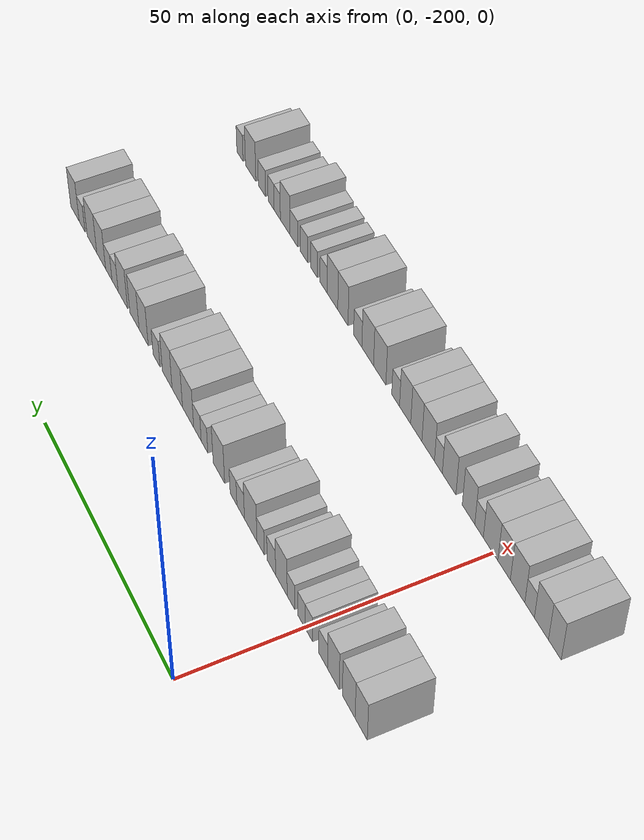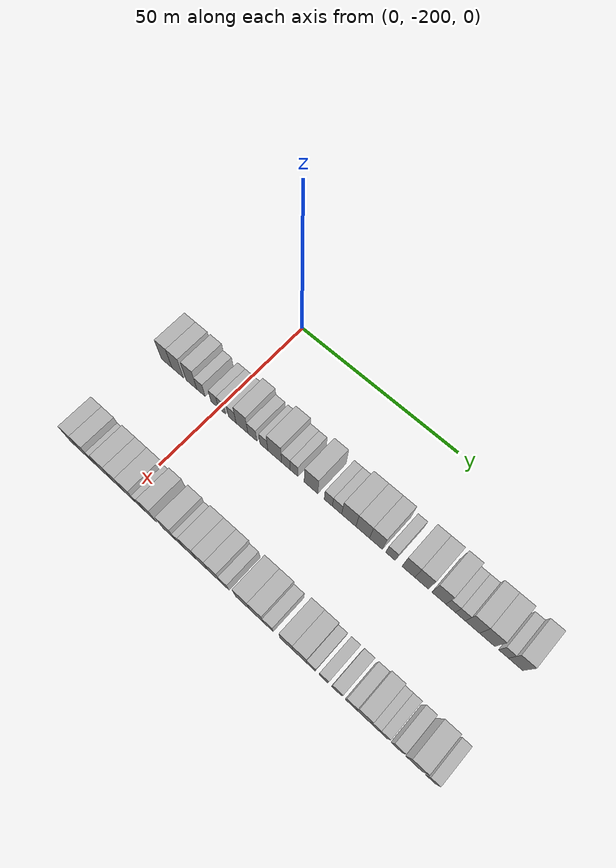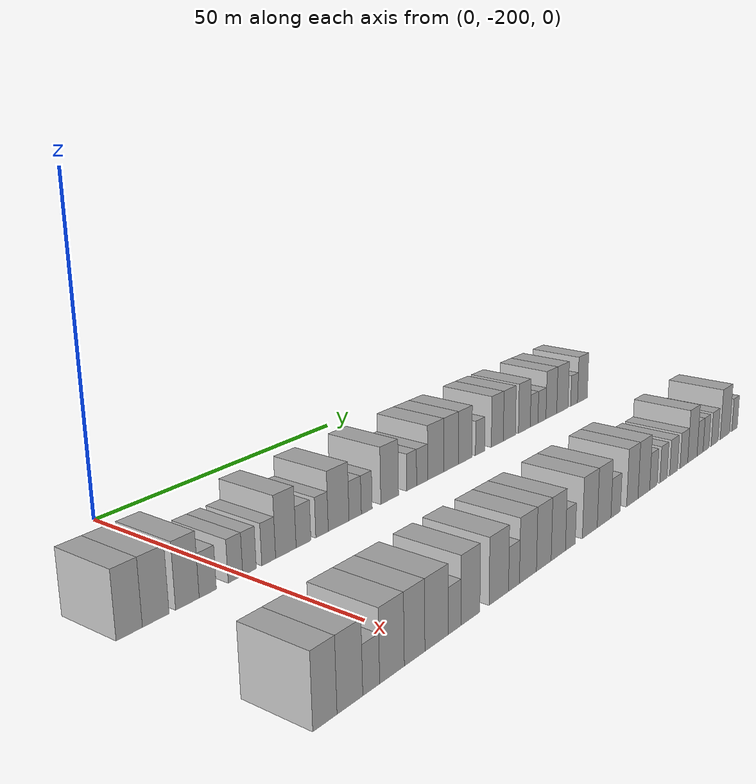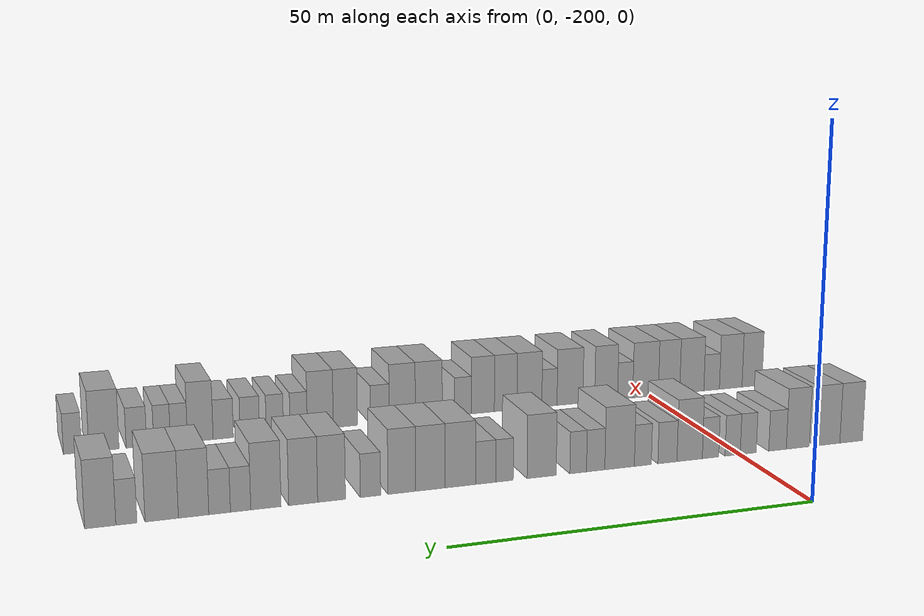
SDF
<sdf version="1.6">
 <world name="default">
  <model name="building_1">
   <static>1</static>
   <pose>25.0000 -218.1177 0 0.000000 0.000000 0.000000</pose>
   <link name="link">
    <pose>0 0 4.50 0 0 0</pose>
    <collision name="collision"><geometry><box><size>10.0000 3.7646 9.0000</size></box></geometry></collision>
    <visual name="visual">
     <cast_shadows>0</cast_shadows>
     <geometry><box><size>10.0000 3.7646 9.0000</size></box></geometry>
     <material>
      <script>
       <uri>model://HANNAS_wall/materials/scripts</uri>
       <uri>model://HANNAS_wall/materials/textures</uri>
       <name>vrc/HANNAS_wall</name>
      </script>
     </material>
    </visual>
   </link>
  </model>
  <model name="building_2">
   <static>1</static>
   <pose>25.0000 -214.2348 0 0.000000 0.000000 0.000000</pose>
   <link name="link">
    <pose>0 0 4.50 0 0 0</pose>
    <collision name="collision"><geometry><box><size>10.0000 4.0012 9.0000</size></box></geometry></collision>
    <visual name="visual">
     <cast_shadows>0</cast_shadows>
     <geometry><box><size>10.0000 4.0012 9.0000</size></box></geometry>
     <material>
      <script>
       <uri>model://HANNAS_wall/materials/scripts</uri>
       <uri>model://HANNAS_wall/materials/textures</uri>
       <name>vrc/HANNAS_wall</name>
      </script>
     </material>
    </visual>
   </link>
  </model>
  <model name="building_3">
   <static>1</static>
   <pose>25.0000 -209.3623 0 0.000000 0.000000 0.000000</pose>
   <link name="link">
    <pose>0 0 4.50 0 0 0</pose>
    <collision name="collision"><geometry><box><size>10.0000 3.7438 9.0000</size></box></geometry></collision>
    <visual name="visual">
     <cast_shadows>0</cast_shadows>
     <geometry><box><size>10.0000 3.7438 9.0000</size></box></geometry>
     <material>
      <script>
       <uri>model://HANNAS_wall/materials/scripts</uri>
       <uri>model://HANNAS_wall/materials/textures</uri>
       <name>vrc/HANNAS_wall</name>
      </script>
     </material>
    </visual>
   </link>
  </model>
  <model name="building_4">
   <static>1</static>
   <pose>25.0000 -206.0749 0 0.000000 0.000000 0.000000</pose>
   <link name="link">
    <pose>0 0 3.00 0 0 0</pose>
    <collision name="collision"><geometry><box><size>10.0000 2.8311 6.0000</size></box></geometry></collision>
    <visual name="visual">
     <cast_shadows>0</cast_shadows>
     <geometry><box><size>10.0000 2.8311 6.0000</size></box></geometry>
     <material>
      <script>
       <uri>model://HANNAS_wall/materials/scripts</uri>
       <uri>model://HANNAS_wall/materials/textures</uri>
       <name>vrc/HANNAS_wall</name>
      </script>
     </material>
    </visual>
   </link>
  </model>
  <model name="building_5">
   <static>1</static>
   <pose>25.0000 -201.3900 0 0.000000 0.000000 0.000000</pose>
   <link name="link">
    <pose>0 0 3.00 0 0 0</pose>
    <collision name="collision"><geometry><box><size>10.0000 2.5387 6.0000</size></box></geometry></collision>
    <visual name="visual">
     <cast_shadows>0</cast_shadows>
     <geometry><box><size>10.0000 2.5387 6.0000</size></box></geometry>
     <material>
      <script>
       <uri>model://HANNAS_wall/materials/scripts</uri>
       <uri>model://HANNAS_wall/materials/textures</uri>
       <name>vrc/HANNAS_wall</name>
      </script>
     </material>
    </visual>
   </link>
  </model>
  <model name="building_6">
   <static>1</static>
   <pose>25.0000 -198.9170 0 0.000000 0.000000 0.000000</pose>
   <link name="link">
    <pose>0 0 3.00 0 0 0</pose>
    <collision name="collision"><geometry><box><size>10.0000 2.4074 6.0000</size></box></geometry></collision>
    <visual name="visual">
     <cast_shadows>0</cast_shadows>
     <geometry><box><size>10.0000 2.4074 6.0000</size></box></geometry>
     <material>
      <script>
       <uri>model://HANNAS_wall/materials/scripts</uri>
       <uri>model://HANNAS_wall/materials/textures</uri>
       <name>vrc/HANNAS_wall</name>
      </script>
     </material>
    </visual>
   </link>
  </model>
  <model name="building_7">
   <static>1</static>
   <pose>25.0000 -195.4330 0 0.000000 0.000000 0.000000</pose>
   <link name="link">
    <pose>0 0 3.00 0 0 0</pose>
    <collision name="collision"><geometry><box><size>10.0000 2.5606 6.0000</size></box></geometry></collision>
    <visual name="visual">
     <cast_shadows>0</cast_shadows>
     <geometry><box><size>10.0000 2.5606 6.0000</size></box></geometry>
     <material>
      <script>
       <uri>model://HANNAS_wall/materials/scripts</uri>
       <uri>model://HANNAS_wall/materials/textures</uri>
       <name>vrc/HANNAS_wall</name>
      </script>
     </material>
    </visual>
   </link>
  </model>
  <model name="building_8">
   <static>1</static>
   <pose>25.0000 -192.1857 0 0.000000 0.000000 0.000000</pose>
   <link name="link">
    <pose>0 0 4.50 0 0 0</pose>
    <collision name="collision"><geometry><box><size>10.0000 3.9340 9.0000</size></box></geometry></collision>
    <visual name="visual">
     <cast_shadows>0</cast_shadows>
     <geometry><box><size>10.0000 3.9340 9.0000</size></box></geometry>
     <material>
      <script>
       <uri>model://HANNAS_wall/materials/scripts</uri>
       <uri>model://HANNAS_wall/materials/textures</uri>
       <name>vrc/HANNAS_wall</name>
      </script>
     </material>
    </visual>
   </link>
  </model>
  <model name="building_9">
   <static>1</static>
   <pose>25.0000 -188.7508 0 0.000000 0.000000 0.000000</pose>
   <link name="link">
    <pose>0 0 3.00 0 0 0</pose>
    <collision name="collision"><geometry><box><size>10.0000 2.9357 6.0000</size></box></geometry></collision>
    <visual name="visual">
     <cast_shadows>0</cast_shadows>
     <geometry><box><size>10.0000 2.9357 6.0000</size></box></geometry>
     <material>
      <script>
       <uri>model://HANNAS_wall/materials/scripts</uri>
       <uri>model://HANNAS_wall/materials/textures</uri>
       <name>vrc/HANNAS_wall</name>
      </script>
     </material>
    </visual>
   </link>
  </model>
  <model name="building_10">
   <static>1</static>
   <pose>25.0000 -184.9936 0 0.000000 0.000000 0.000000</pose>
   <link name="link">
    <pose>0 0 3.00 0 0 0</pose>
    <collision name="collision"><geometry><box><size>10.0000 2.5789 6.0000</size></box></geometry></collision>
    <visual name="visual">
     <cast_shadows>0</cast_shadows>
     <geometry><box><size>10.0000 2.5789 6.0000</size></box></geometry>
     <material>
      <script>
       <uri>model://HANNAS_wall/materials/scripts</uri>
       <uri>model://HANNAS_wall/materials/textures</uri>
       <name>vrc/HANNAS_wall</name>
      </script>
     </material>
    </visual>
   </link>
  </model>
  <model name="building_11">
   <static>1</static>
   <pose>25.0000 -181.4808 0 0.000000 0.000000 0.000000</pose>
   <link name="link">
    <pose>0 0 4.50 0 0 0</pose>
    <collision name="collision"><geometry><box><size>10.0000 4.4466 9.0000</size></box></geometry></collision>
    <visual name="visual">
     <cast_shadows>0</cast_shadows>
     <geometry><box><size>10.0000 4.4466 9.0000</size></box></geometry>
     <material>
      <script>
       <uri>model://HANNAS_wall/materials/scripts</uri>
       <uri>model://HANNAS_wall/materials/textures</uri>
       <name>vrc/HANNAS_wall</name>
      </script>
     </material>
    </visual>
   </link>
  </model>
  <model name="building_12">
   <static>1</static>
   <pose>25.0000 -177.8910 0 0.000000 0.000000 0.000000</pose>
   <link name="link">
    <pose>0 0 3.00 0 0 0</pose>
    <collision name="collision"><geometry><box><size>10.0000 2.7331 6.0000</size></box></geometry></collision>
    <visual name="visual">
     <cast_shadows>0</cast_shadows>
     <geometry><box><size>10.0000 2.7331 6.0000</size></box></geometry>
     <material>
      <script>
       <uri>model://HANNAS_wall/materials/scripts</uri>
       <uri>model://HANNAS_wall/materials/textures</uri>
       <name>vrc/HANNAS_wall</name>
      </script>
     </material>
    </visual>
   </link>
  </model>
  <model name="building_13">
   <static>1</static>
   <pose>25.0000 -175.2878 0 0.000000 0.000000 0.000000</pose>
   <link name="link">
    <pose>0 0 3.00 0 0 0</pose>
    <collision name="collision"><geometry><box><size>10.0000 2.4733 6.0000</size></box></geometry></collision>
    <visual name="visual">
     <cast_shadows>0</cast_shadows>
     <geometry><box><size>10.0000 2.4733 6.0000</size></box></geometry>
     <material>
      <script>
       <uri>model://HANNAS_wall/materials/scripts</uri>
       <uri>model://HANNAS_wall/materials/textures</uri>
       <name>vrc/HANNAS_wall</name>
      </script>
     </material>
    </visual>
   </link>
  </model>
  <model name="building_14">
   <static>1</static>
   <pose>25.0000 -169.9233 0 0.000000 0.000000 0.000000</pose>
   <link name="link">
    <pose>0 0 4.50 0 0 0</pose>
    <collision name="collision"><geometry><box><size>10.0000 4.2557 9.0000</size></box></geometry></collision>
    <visual name="visual">
     <cast_shadows>0</cast_shadows>
     <geometry><box><size>10.0000 4.2557 9.0000</size></box></geometry>
     <material>
      <script>
       <uri>model://HANNAS_wall/materials/scripts</uri>
       <uri>model://HANNAS_wall/materials/textures</uri>
       <name>vrc/HANNAS_wall</name>
      </script>
     </material>
    </visual>
   </link>
  </model>
  <model name="building_15">
   <static>1</static>
   <pose>25.0000 -164.5388 0 0.000000 0.000000 0.000000</pose>
   <link name="link">
    <pose>0 0 3.00 0 0 0</pose>
    <collision name="collision"><geometry><box><size>10.0000 2.5134 6.0000</size></box></geometry></collision>
    <visual name="visual">
     <cast_shadows>0</cast_shadows>
     <geometry><box><size>10.0000 2.5134 6.0000</size></box></geometry>
     <material>
      <script>
       <uri>model://HANNAS_wall/materials/scripts</uri>
       <uri>model://HANNAS_wall/materials/textures</uri>
       <name>vrc/HANNAS_wall</name>
      </script>
     </material>
    </visual>
   </link>
  </model>
  <model name="building_16">
   <static>1</static>
   <pose>25.0000 -161.8554 0 0.000000 0.000000 0.000000</pose>
   <link name="link">
    <pose>0 0 3.00 0 0 0</pose>
    <collision name="collision"><geometry><box><size>10.0000 2.8534 6.0000</size></box></geometry></collision>
    <visual name="visual">
     <cast_shadows>0</cast_shadows>
     <geometry><box><size>10.0000 2.8534 6.0000</size></box></geometry>
     <material>
      <script>
       <uri>model://HANNAS_wall/materials/scripts</uri>
       <uri>model://HANNAS_wall/materials/textures</uri>
       <name>vrc/HANNAS_wall</name>
      </script>
     </material>
    </visual>
   </link>
  </model>
  <model name="building_17">
   <static>1</static>
   <pose>25.0000 -158.2648 0 0.000000 0.000000 0.000000</pose>
   <link name="link">
    <pose>0 0 4.50 0 0 0</pose>
    <collision name="collision"><geometry><box><size>10.0000 4.3278 9.0000</size></box></geometry></collision>
    <visual name="visual">
     <cast_shadows>0</cast_shadows>
     <geometry><box><size>10.0000 4.3278 9.0000</size></box></geometry>
     <material>
      <script>
       <uri>model://HANNAS_wall/materials/scripts</uri>
       <uri>model://HANNAS_wall/materials/textures</uri>
       <name>vrc/HANNAS_wall</name>
      </script>
     </material>
    </visual>
   </link>
  </model>
  <model name="building_18">
   <static>1</static>
   <pose>25.0000 -154.0507 0 0.000000 0.000000 0.000000</pose>
   <link name="link">
    <pose>0 0 4.50 0 0 0</pose>
    <collision name="collision"><geometry><box><size>10.0000 4.1003 9.0000</size></box></geometry></collision>
    <visual name="visual">
     <cast_shadows>0</cast_shadows>
     <geometry><box><size>10.0000 4.1003 9.0000</size></box></geometry>
     <material>
      <script>
       <uri>model://HANNAS_wall/materials/scripts</uri>
       <uri>model://HANNAS_wall/materials/textures</uri>
       <name>vrc/HANNAS_wall</name>
      </script>
     </material>
    </visual>
   </link>
  </model>
  <model name="building_19">
   <static>1</static>
   <pose>25.0000 -150.0863 0 0.000000 0.000000 0.000000</pose>
   <link name="link">
    <pose>0 0 4.50 0 0 0</pose>
    <collision name="collision"><geometry><box><size>10.0000 3.8285 9.0000</size></box></geometry></collision>
    <visual name="visual">
     <cast_shadows>0</cast_shadows>
     <geometry><box><size>10.0000 3.8285 9.0000</size></box></geometry>
     <material>
      <script>
       <uri>model://HANNAS_wall/materials/scripts</uri>
       <uri>model://HANNAS_wall/materials/textures</uri>
       <name>vrc/HANNAS_wall</name>
      </script>
     </material>
    </visual>
   </link>
  </model>
  <model name="building_20">
   <static>1</static>
   <pose>25.0000 -145.7861 0 0.000000 0.000000 0.000000</pose>
   <link name="link">
    <pose>0 0 3.00 0 0 0</pose>
    <collision name="collision"><geometry><box><size>10.0000 2.7718 6.0000</size></box></geometry></collision>
    <visual name="visual">
     <cast_shadows>0</cast_shadows>
     <geometry><box><size>10.0000 2.7718 6.0000</size></box></geometry>
     <material>
      <script>
       <uri>model://HANNAS_wall/materials/scripts</uri>
       <uri>model://HANNAS_wall/materials/textures</uri>
       <name>vrc/HANNAS_wall</name>
      </script>
     </material>
    </visual>
   </link>
  </model>
  <model name="building_21">
   <static>1</static>
   <pose>25.0000 -140.5354 0 0.000000 0.000000 0.000000</pose>
   <link name="link">
    <pose>0 0 4.50 0 0 0</pose>
    <collision name="collision"><geometry><box><size>10.0000 3.7296 9.0000</size></box></geometry></collision>
    <visual name="visual">
     <cast_shadows>0</cast_shadows>
     <geometry><box><size>10.0000 3.7296 9.0000</size></box></geometry>
     <material>
      <script>
       <uri>model://HANNAS_wall/materials/scripts</uri>
       <uri>model://HANNAS_wall/materials/textures</uri>
       <name>vrc/HANNAS_wall</name>
      </script>
     </material>
    </visual>
   </link>
  </model>
  <model name="building_22">
   <static>1</static>
   <pose>25.0000 -136.7452 0 0.000000 0.000000 0.000000</pose>
   <link name="link">
    <pose>0 0 4.50 0 0 0</pose>
    <collision name="collision"><geometry><box><size>10.0000 3.8507 9.0000</size></box></geometry></collision>
    <visual name="visual">
     <cast_shadows>0</cast_shadows>
     <geometry><box><size>10.0000 3.8507 9.0000</size></box></geometry>
     <material>
      <script>
       <uri>model://HANNAS_wall/materials/scripts</uri>
       <uri>model://HANNAS_wall/materials/textures</uri>
       <name>vrc/HANNAS_wall</name>
      </script>
     </material>
    </visual>
   </link>
  </model>
  <model name="building_23">
   <static>1</static>
   <pose>25.0000 -131.8363 0 0.000000 0.000000 0.000000</pose>
   <link name="link">
    <pose>0 0 4.50 0 0 0</pose>
    <collision name="collision"><geometry><box><size>10.0000 3.9670 9.0000</size></box></geometry></collision>
    <visual name="visual">
     <cast_shadows>0</cast_shadows>
     <geometry><box><size>10.0000 3.9670 9.0000</size></box></geometry>
     <material>
      <script>
       <uri>model://HANNAS_wall/materials/scripts</uri>
       <uri>model://HANNAS_wall/materials/textures</uri>
       <name>vrc/HANNAS_wall</name>
      </script>
     </material>
    </visual>
   </link>
  </model>
  <model name="building_24">
   <static>1</static>
   <pose>25.0000 -128.5348 0 0.000000 0.000000 0.000000</pose>
   <link name="link">
    <pose>0 0 3.00 0 0 0</pose>
    <collision name="collision"><geometry><box><size>10.0000 2.6360 6.0000</size></box></geometry></collision>
    <visual name="visual">
     <cast_shadows>0</cast_shadows>
     <geometry><box><size>10.0000 2.6360 6.0000</size></box></geometry>
     <material>
      <script>
       <uri>model://HANNAS_wall/materials/scripts</uri>
       <uri>model://HANNAS_wall/materials/textures</uri>
       <name>vrc/HANNAS_wall</name>
      </script>
     </material>
    </visual>
   </link>
  </model>
  <model name="building_25">
   <static>1</static>
   <pose>25.0000 -125.8305 0 0.000000 0.000000 0.000000</pose>
   <link name="link">
    <pose>0 0 3.00 0 0 0</pose>
    <collision name="collision"><geometry><box><size>10.0000 2.7727 6.0000</size></box></geometry></collision>
    <visual name="visual">
     <cast_shadows>0</cast_shadows>
     <geometry><box><size>10.0000 2.7727 6.0000</size></box></geometry>
     <material>
      <script>
       <uri>model://HANNAS_wall/materials/scripts</uri>
       <uri>model://HANNAS_wall/materials/textures</uri>
       <name>vrc/HANNAS_wall</name>
      </script>
     </material>
    </visual>
   </link>
  </model>
  <model name="building_26">
   <static>1</static>
   <pose>25.0000 -122.5052 0 0.000000 0.000000 0.000000</pose>
   <link name="link">
    <pose>0 0 4.50 0 0 0</pose>
    <collision name="collision"><geometry><box><size>10.0000 3.8780 9.0000</size></box></geometry></collision>
    <visual name="visual">
     <cast_shadows>0</cast_shadows>
     <geometry><box><size>10.0000 3.8780 9.0000</size></box></geometry>
     <material>
      <script>
       <uri>model://HANNAS_wall/materials/scripts</uri>
       <uri>model://HANNAS_wall/materials/textures</uri>
       <name>vrc/HANNAS_wall</name>
      </script>
     </material>
    </visual>
   </link>
  </model>
  <model name="building_27">
   <static>1</static>
   <pose>25.0000 -118.4681 0 0.000000 0.000000 0.000000</pose>
   <link name="link">
    <pose>0 0 4.50 0 0 0</pose>
    <collision name="collision"><geometry><box><size>10.0000 4.1962 9.0000</size></box></geometry></collision>
    <visual name="visual">
     <cast_shadows>0</cast_shadows>
     <geometry><box><size>10.0000 4.1962 9.0000</size></box></geometry>
     <material>
      <script>
       <uri>model://HANNAS_wall/materials/scripts</uri>
       <uri>model://HANNAS_wall/materials/textures</uri>
       <name>vrc/HANNAS_wall</name>
      </script>
     </material>
    </visual>
   </link>
  </model>
  <model name="building_28">
   <static>1</static>
   <pose>25.0000 -114.0590 0 0.000000 0.000000 0.000000</pose>
   <link name="link">
    <pose>0 0 3.00 0 0 0</pose>
    <collision name="collision"><geometry><box><size>10.0000 2.6220 6.0000</size></box></geometry></collision>
    <visual name="visual">
     <cast_shadows>0</cast_shadows>
     <geometry><box><size>10.0000 2.6220 6.0000</size></box></geometry>
     <material>
      <script>
       <uri>model://HANNAS_wall/materials/scripts</uri>
       <uri>model://HANNAS_wall/materials/textures</uri>
       <name>vrc/HANNAS_wall</name>
      </script>
     </material>
    </visual>
   </link>
  </model>
  <model name="building_29">
   <static>1</static>
   <pose>25.0000 -110.8329 0 0.000000 0.000000 0.000000</pose>
   <link name="link">
    <pose>0 0 4.50 0 0 0</pose>
    <collision name="collision"><geometry><box><size>10.0000 3.8302 9.0000</size></box></geometry></collision>
    <visual name="visual">
     <cast_shadows>0</cast_shadows>
     <geometry><box><size>10.0000 3.8302 9.0000</size></box></geometry>
     <material>
      <script>
       <uri>model://HANNAS_wall/materials/scripts</uri>
       <uri>model://HANNAS_wall/materials/textures</uri>
       <name>vrc/HANNAS_wall</name>
      </script>
     </material>
    </visual>
   </link>
  </model>
  <model name="building_117">
   <static>1</static>
   <pose>55.0000 -218.1801 0 0.000000 0.000000 0.000000</pose>
   <link name="link">
    <pose>0 0 4.50 0 0 0</pose>
    <collision name="collision"><geometry><box><size>10.0000 3.6397 9.0000</size></box></geometry></collision>
    <visual name="visual">
     <cast_shadows>0</cast_shadows>
     <geometry><box><size>10.0000 3.6397 9.0000</size></box></geometry>
     <material>
      <script>
       <uri>model://HANNAS_wall/materials/scripts</uri>
       <uri>model://HANNAS_wall/materials/textures</uri>
       <name>vrc/HANNAS_wall</name>
      </script>
     </material>
    </visual>
   </link>
  </model>
  <model name="building_118">
   <static>1</static>
   <pose>55.0000 -214.3243 0 0.000000 0.000000 0.000000</pose>
   <link name="link">
    <pose>0 0 4.50 0 0 0</pose>
    <collision name="collision"><geometry><box><size>10.0000 4.0719 9.0000</size></box></geometry></collision>
    <visual name="visual">
     <cast_shadows>0</cast_shadows>
     <geometry><box><size>10.0000 4.0719 9.0000</size></box></geometry>
     <material>
      <script>
       <uri>model://HANNAS_wall/materials/scripts</uri>
       <uri>model://HANNAS_wall/materials/textures</uri>
       <name>vrc/HANNAS_wall</name>
      </script>
     </material>
    </visual>
   </link>
  </model>
  <model name="building_119">
   <static>1</static>
   <pose>55.0000 -210.8907 0 0.000000 0.000000 0.000000</pose>
   <link name="link">
    <pose>0 0 3.00 0 0 0</pose>
    <collision name="collision"><geometry><box><size>10.0000 2.7954 6.0000</size></box></geometry></collision>
    <visual name="visual">
     <cast_shadows>0</cast_shadows>
     <geometry><box><size>10.0000 2.7954 6.0000</size></box></geometry>
     <material>
      <script>
       <uri>model://HANNAS_wall/materials/scripts</uri>
       <uri>model://HANNAS_wall/materials/textures</uri>
       <name>vrc/HANNAS_wall</name>
      </script>
     </material>
    </visual>
   </link>
  </model>
  <model name="building_120">
   <static>1</static>
   <pose>55.0000 -207.3523 0 0.000000 0.000000 0.000000</pose>
   <link name="link">
    <pose>0 0 4.50 0 0 0</pose>
    <collision name="collision"><geometry><box><size>10.0000 4.2812 9.0000</size></box></geometry></collision>
    <visual name="visual">
     <cast_shadows>0</cast_shadows>
     <geometry><box><size>10.0000 4.2812 9.0000</size></box></geometry>
     <material>
      <script>
       <uri>model://HANNAS_wall/materials/scripts</uri>
       <uri>model://HANNAS_wall/materials/textures</uri>
       <name>vrc/HANNAS_wall</name>
      </script>
     </material>
    </visual>
   </link>
  </model>
  <model name="building_121">
   <static>1</static>
   <pose>55.0000 -203.3330 0 0.000000 0.000000 0.000000</pose>
   <link name="link">
    <pose>0 0 4.50 0 0 0</pose>
    <collision name="collision"><geometry><box><size>10.0000 3.7576 9.0000</size></box></geometry></collision>
    <visual name="visual">
     <cast_shadows>0</cast_shadows>
     <geometry><box><size>10.0000 3.7576 9.0000</size></box></geometry>
     <material>
      <script>
       <uri>model://HANNAS_wall/materials/scripts</uri>
       <uri>model://HANNAS_wall/materials/textures</uri>
       <name>vrc/HANNAS_wall</name>
      </script>
     </material>
    </visual>
   </link>
  </model>
  <model name="building_122">
   <static>1</static>
   <pose>55.0000 -199.2296 0 0.000000 0.000000 0.000000</pose>
   <link name="link">
    <pose>0 0 4.50 0 0 0</pose>
    <collision name="collision"><geometry><box><size>10.0000 4.4492 9.0000</size></box></geometry></collision>
    <visual name="visual">
     <cast_shadows>0</cast_shadows>
     <geometry><box><size>10.0000 4.4492 9.0000</size></box></geometry>
     <material>
      <script>
       <uri>model://HANNAS_wall/materials/scripts</uri>
       <uri>model://HANNAS_wall/materials/textures</uri>
       <name>vrc/HANNAS_wall</name>
      </script>
     </material>
    </visual>
   </link>
  </model>
  <model name="building_123">
   <static>1</static>
   <pose>55.0000 -195.6865 0 0.000000 0.000000 0.000000</pose>
   <link name="link">
    <pose>0 0 3.00 0 0 0</pose>
    <collision name="collision"><geometry><box><size>10.0000 2.6368 6.0000</size></box></geometry></collision>
    <visual name="visual">
     <cast_shadows>0</cast_shadows>
     <geometry><box><size>10.0000 2.6368 6.0000</size></box></geometry>
     <material>
      <script>
       <uri>model://HANNAS_wall/materials/scripts</uri>
       <uri>model://HANNAS_wall/materials/textures</uri>
       <name>vrc/HANNAS_wall</name>
      </script>
     </material>
    </visual>
   </link>
  </model>
  <model name="building_124">
   <static>1</static>
   <pose>55.0000 -192.4064 0 0.000000 0.000000 0.000000</pose>
   <link name="link">
    <pose>0 0 4.50 0 0 0</pose>
    <collision name="collision"><geometry><box><size>10.0000 3.9234 9.0000</size></box></geometry></collision>
    <visual name="visual">
     <cast_shadows>0</cast_shadows>
     <geometry><box><size>10.0000 3.9234 9.0000</size></box></geometry>
     <material>
      <script>
       <uri>model://HANNAS_wall/materials/scripts</uri>
       <uri>model://HANNAS_wall/materials/textures</uri>
       <name>vrc/HANNAS_wall</name>
      </script>
     </material>
    </visual>
   </link>
  </model>
  <model name="building_125">
   <static>1</static>
   <pose>55.0000 -186.2597 0 0.000000 0.000000 0.000000</pose>
   <link name="link">
    <pose>0 0 4.50 0 0 0</pose>
    <collision name="collision"><geometry><box><size>10.0000 4.3700 9.0000</size></box></geometry></collision>
    <visual name="visual">
     <cast_shadows>0</cast_shadows>
     <geometry><box><size>10.0000 4.3700 9.0000</size></box></geometry>
     <material>
      <script>
       <uri>model://HANNAS_wall/materials/scripts</uri>
       <uri>model://HANNAS_wall/materials/textures</uri>
       <name>vrc/HANNAS_wall</name>
      </script>
     </material>
    </visual>
   </link>
  </model>
  <model name="building_126">
   <static>1</static>
   <pose>55.0000 -182.8068 0 0.000000 0.000000 0.000000</pose>
   <link name="link">
    <pose>0 0 3.00 0 0 0</pose>
    <collision name="collision"><geometry><box><size>10.0000 2.5359 6.0000</size></box></geometry></collision>
    <visual name="visual">
     <cast_shadows>0</cast_shadows>
     <geometry><box><size>10.0000 2.5359 6.0000</size></box></geometry>
     <material>
      <script>
       <uri>model://HANNAS_wall/materials/scripts</uri>
       <uri>model://HANNAS_wall/materials/textures</uri>
       <name>vrc/HANNAS_wall</name>
      </script>
     </material>
    </visual>
   </link>
  </model>
  <model name="building_127">
   <static>1</static>
   <pose>55.0000 -179.4733 0 0.000000 0.000000 0.000000</pose>
   <link name="link">
    <pose>0 0 4.50 0 0 0</pose>
    <collision name="collision"><geometry><box><size>10.0000 4.1312 9.0000</size></box></geometry></collision>
    <visual name="visual">
     <cast_shadows>0</cast_shadows>
     <geometry><box><size>10.0000 4.1312 9.0000</size></box></geometry>
     <material>
      <script>
       <uri>model://HANNAS_wall/materials/scripts</uri>
       <uri>model://HANNAS_wall/materials/textures</uri>
       <name>vrc/HANNAS_wall</name>
      </script>
     </material>
    </visual>
   </link>
  </model>
  <model name="building_128">
   <static>1</static>
   <pose>55.0000 -175.5440 0 0.000000 0.000000 0.000000</pose>
   <link name="link">
    <pose>0 0 4.50 0 0 0</pose>
    <collision name="collision"><geometry><box><size>10.0000 3.7274 9.0000</size></box></geometry></collision>
    <visual name="visual">
     <cast_shadows>0</cast_shadows>
     <geometry><box><size>10.0000 3.7274 9.0000</size></box></geometry>
     <material>
      <script>
       <uri>model://HANNAS_wall/materials/scripts</uri>
       <uri>model://HANNAS_wall/materials/textures</uri>
       <name>vrc/HANNAS_wall</name>
      </script>
     </material>
    </visual>
   </link>
  </model>
  <model name="building_129">
   <static>1</static>
   <pose>55.0000 -171.7988 0 0.000000 0.000000 0.000000</pose>
   <link name="link">
    <pose>0 0 4.50 0 0 0</pose>
    <collision name="collision"><geometry><box><size>10.0000 3.7630 9.0000</size></box></geometry></collision>
    <visual name="visual">
     <cast_shadows>0</cast_shadows>
     <geometry><box><size>10.0000 3.7630 9.0000</size></box></geometry>
     <material>
      <script>
       <uri>model://HANNAS_wall/materials/scripts</uri>
       <uri>model://HANNAS_wall/materials/textures</uri>
       <name>vrc/HANNAS_wall</name>
      </script>
     </material>
    </visual>
   </link>
  </model>
  <model name="building_130">
   <static>1</static>
   <pose>55.0000 -168.5788 0 0.000000 0.000000 0.000000</pose>
   <link name="link">
    <pose>0 0 3.00 0 0 0</pose>
    <collision name="collision"><geometry><box><size>10.0000 2.6768 6.0000</size></box></geometry></collision>
    <visual name="visual">
     <cast_shadows>0</cast_shadows>
     <geometry><box><size>10.0000 2.6768 6.0000</size></box></geometry>
     <material>
      <script>
       <uri>model://HANNAS_wall/materials/scripts</uri>
       <uri>model://HANNAS_wall/materials/textures</uri>
       <name>vrc/HANNAS_wall</name>
      </script>
     </material>
    </visual>
   </link>
  </model>
  <model name="building_131">
   <static>1</static>
   <pose>55.0000 -163.0974 0 0.000000 0.000000 0.000000</pose>
   <link name="link">
    <pose>0 0 4.50 0 0 0</pose>
    <collision name="collision"><geometry><box><size>10.0000 4.2861 9.0000</size></box></geometry></collision>
    <visual name="visual">
     <cast_shadows>0</cast_shadows>
     <geometry><box><size>10.0000 4.2861 9.0000</size></box></geometry>
     <material>
      <script>
       <uri>model://HANNAS_wall/materials/scripts</uri>
       <uri>model://HANNAS_wall/materials/textures</uri>
       <name>vrc/HANNAS_wall</name>
      </script>
     </material>
    </visual>
   </link>
  </model>
  <model name="building_132">
   <static>1</static>
   <pose>55.0000 -158.8907 0 0.000000 0.000000 0.000000</pose>
   <link name="link">
    <pose>0 0 4.50 0 0 0</pose>
    <collision name="collision"><geometry><box><size>10.0000 4.1274 9.0000</size></box></geometry></collision>
    <visual name="visual">
     <cast_shadows>0</cast_shadows>
     <geometry><box><size>10.0000 4.1274 9.0000</size></box></geometry>
     <material>
      <script>
       <uri>model://HANNAS_wall/materials/scripts</uri>
       <uri>model://HANNAS_wall/materials/textures</uri>
       <name>vrc/HANNAS_wall</name>
      </script>
     </material>
    </visual>
   </link>
  </model>
  <model name="building_133">
   <static>1</static>
   <pose>55.0000 -155.3497 0 0.000000 0.000000 0.000000</pose>
   <link name="link">
    <pose>0 0 3.00 0 0 0</pose>
    <collision name="collision"><geometry><box><size>10.0000 2.9546 6.0000</size></box></geometry></collision>
    <visual name="visual">
     <cast_shadows>0</cast_shadows>
     <geometry><box><size>10.0000 2.9546 6.0000</size></box></geometry>
     <material>
      <script>
       <uri>model://HANNAS_wall/materials/scripts</uri>
       <uri>model://HANNAS_wall/materials/textures</uri>
       <name>vrc/HANNAS_wall</name>
      </script>
     </material>
    </visual>
   </link>
  </model>
  <model name="building_134">
   <static>1</static>
   <pose>55.0000 -150.0129 0 0.000000 0.000000 0.000000</pose>
   <link name="link">
    <pose>0 0 4.50 0 0 0</pose>
    <collision name="collision"><geometry><box><size>10.0000 3.7191 9.0000</size></box></geometry></collision>
    <visual name="visual">
     <cast_shadows>0</cast_shadows>
     <geometry><box><size>10.0000 3.7191 9.0000</size></box></geometry>
     <material>
      <script>
       <uri>model://HANNAS_wall/materials/scripts</uri>
       <uri>model://HANNAS_wall/materials/textures</uri>
       <name>vrc/HANNAS_wall</name>
      </script>
     </material>
    </visual>
   </link>
  </model>
  <model name="building_135">
   <static>1</static>
   <pose>55.0000 -146.1677 0 0.000000 0.000000 0.000000</pose>
   <link name="link">
    <pose>0 0 4.50 0 0 0</pose>
    <collision name="collision"><geometry><box><size>10.0000 3.9712 9.0000</size></box></geometry></collision>
    <visual name="visual">
     <cast_shadows>0</cast_shadows>
     <geometry><box><size>10.0000 3.9712 9.0000</size></box></geometry>
     <material>
      <script>
       <uri>model://HANNAS_wall/materials/scripts</uri>
       <uri>model://HANNAS_wall/materials/textures</uri>
       <name>vrc/HANNAS_wall</name>
      </script>
     </material>
    </visual>
   </link>
  </model>
  <model name="building_136">
   <static>1</static>
   <pose>55.0000 -142.8790 0 0.000000 0.000000 0.000000</pose>
   <link name="link">
    <pose>0 0 3.00 0 0 0</pose>
    <collision name="collision"><geometry><box><size>10.0000 2.6063 6.0000</size></box></geometry></collision>
    <visual name="visual">
     <cast_shadows>0</cast_shadows>
     <geometry><box><size>10.0000 2.6063 6.0000</size></box></geometry>
     <material>
      <script>
       <uri>model://HANNAS_wall/materials/scripts</uri>
       <uri>model://HANNAS_wall/materials/textures</uri>
       <name>vrc/HANNAS_wall</name>
      </script>
     </material>
    </visual>
   </link>
  </model>
  <model name="building_137">
   <static>1</static>
   <pose>55.0000 -139.2829 0 0.000000 0.000000 0.000000</pose>
   <link name="link">
    <pose>0 0 3.00 0 0 0</pose>
    <collision name="collision"><geometry><box><size>10.0000 2.5858 6.0000</size></box></geometry></collision>
    <visual name="visual">
     <cast_shadows>0</cast_shadows>
     <geometry><box><size>10.0000 2.5858 6.0000</size></box></geometry>
     <material>
      <script>
       <uri>model://HANNAS_wall/materials/scripts</uri>
       <uri>model://HANNAS_wall/materials/textures</uri>
       <name>vrc/HANNAS_wall</name>
      </script>
     </material>
    </visual>
   </link>
  </model>
  <model name="building_138">
   <static>1</static>
   <pose>55.0000 -135.5457 0 0.000000 0.000000 0.000000</pose>
   <link name="link">
    <pose>0 0 3.00 0 0 0</pose>
    <collision name="collision"><geometry><box><size>10.0000 2.8887 6.0000</size></box></geometry></collision>
    <visual name="visual">
     <cast_shadows>0</cast_shadows>
     <geometry><box><size>10.0000 2.8887 6.0000</size></box></geometry>
     <material>
      <script>
       <uri>model://HANNAS_wall/materials/scripts</uri>
       <uri>model://HANNAS_wall/materials/textures</uri>
       <name>vrc/HANNAS_wall</name>
      </script>
     </material>
    </visual>
   </link>
  </model>
  <model name="building_139">
   <static>1</static>
   <pose>55.0000 -131.6107 0 0.000000 0.000000 0.000000</pose>
   <link name="link">
    <pose>0 0 3.00 0 0 0</pose>
    <collision name="collision"><geometry><box><size>10.0000 2.9811 6.0000</size></box></geometry></collision>
    <visual name="visual">
     <cast_shadows>0</cast_shadows>
     <geometry><box><size>10.0000 2.9811 6.0000</size></box></geometry>
     <material>
      <script>
       <uri>model://HANNAS_wall/materials/scripts</uri>
       <uri>model://HANNAS_wall/materials/textures</uri>
       <name>vrc/HANNAS_wall</name>
      </script>
     </material>
    </visual>
   </link>
  </model>
  <model name="building_140">
   <static>1</static>
   <pose>55.0000 -128.2485 0 0.000000 0.000000 0.000000</pose>
   <link name="link">
    <pose>0 0 4.50 0 0 0</pose>
    <collision name="collision"><geometry><box><size>10.0000 3.7433 9.0000</size></box></geometry></collision>
    <visual name="visual">
     <cast_shadows>0</cast_shadows>
     <geometry><box><size>10.0000 3.7433 9.0000</size></box></geometry>
     <material>
      <script>
       <uri>model://HANNAS_wall/materials/scripts</uri>
       <uri>model://HANNAS_wall/materials/textures</uri>
       <name>vrc/HANNAS_wall</name>
      </script>
     </material>
    </visual>
   </link>
  </model>
  <model name="building_141">
   <static>1</static>
   <pose>55.0000 -125.1434 0 0.000000 0.000000 0.000000</pose>
   <link name="link">
    <pose>0 0 3.00 0 0 0</pose>
    <collision name="collision"><geometry><box><size>10.0000 2.4670 6.0000</size></box></geometry></collision>
    <visual name="visual">
     <cast_shadows>0</cast_shadows>
     <geometry><box><size>10.0000 2.4670 6.0000</size></box></geometry>
     <material>
      <script>
       <uri>model://HANNAS_wall/materials/scripts</uri>
       <uri>model://HANNAS_wall/materials/textures</uri>
       <name>vrc/HANNAS_wall</name>
      </script>
     </material>
    </visual>
   </link>
  </model>
  <model name="building_142">
   <static>1</static>
   <pose>55.0000 -122.7060 0 0.000000 0.000000 0.000000</pose>
   <link name="link">
    <pose>0 0 3.00 0 0 0</pose>
    <collision name="collision"><geometry><box><size>10.0000 2.4078 6.0000</size></box></geometry></collision>
    <visual name="visual">
     <cast_shadows>0</cast_shadows>
     <geometry><box><size>10.0000 2.4078 6.0000</size></box></geometry>
     <material>
      <script>
       <uri>model://HANNAS_wall/materials/scripts</uri>
       <uri>model://HANNAS_wall/materials/textures</uri>
       <name>vrc/HANNAS_wall</name>
      </script>
     </material>
    </visual>
   </link>
  </model>
  <model name="building_143">
   <static>1</static>
   <pose>55.0000 -119.0363 0 0.000000 0.000000 0.000000</pose>
   <link name="link">
    <pose>0 0 3.00 0 0 0</pose>
    <collision name="collision"><geometry><box><size>10.0000 2.9316 6.0000</size></box></geometry></collision>
    <visual name="visual">
     <cast_shadows>0</cast_shadows>
     <geometry><box><size>10.0000 2.9316 6.0000</size></box></geometry>
     <material>
      <script>
       <uri>model://HANNAS_wall/materials/scripts</uri>
       <uri>model://HANNAS_wall/materials/textures</uri>
       <name>vrc/HANNAS_wall</name>
      </script>
     </material>
    </visual>
   </link>
  </model>
  <model name="building_144">
   <static>1</static>
   <pose>55.0000 -114.4488 0 0.000000 0.000000 0.000000</pose>
   <link name="link">
    <pose>0 0 4.50 0 0 0</pose>
    <collision name="collision"><geometry><box><size>10.0000 4.2433 9.0000</size></box></geometry></collision>
    <visual name="visual">
     <cast_shadows>0</cast_shadows>
     <geometry><box><size>10.0000 4.2433 9.0000</size></box></geometry>
     <material>
      <script>
       <uri>model://HANNAS_wall/materials/scripts</uri>
       <uri>model://HANNAS_wall/materials/textures</uri>
       <name>vrc/HANNAS_wall</name>
      </script>
     </material>
    </visual>
   </link>
  </model>
  <model name="building_145">
   <static>1</static>
   <pose>55.0000 -110.0543 0 0.000000 0.000000 0.000000</pose>
   <link name="link">
    <pose>0 0 3.00 0 0 0</pose>
    <collision name="collision"><geometry><box><size>10.0000 2.5459 6.0000</size></box></geometry></collision>
    <visual name="visual">
     <cast_shadows>0</cast_shadows>
     <geometry><box><size>10.0000 2.5459 6.0000</size></box></geometry>
     <material>
      <script>
       <uri>model://HANNAS_wall/materials/scripts</uri>
       <uri>model://HANNAS_wall/materials/textures</uri>
       <name>vrc/HANNAS_wall</name>
      </script>
     </material>
    </visual>
   </link>
  </model>
 </world>
</sdf>
